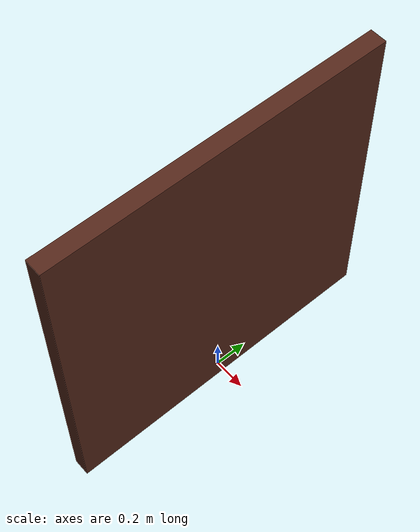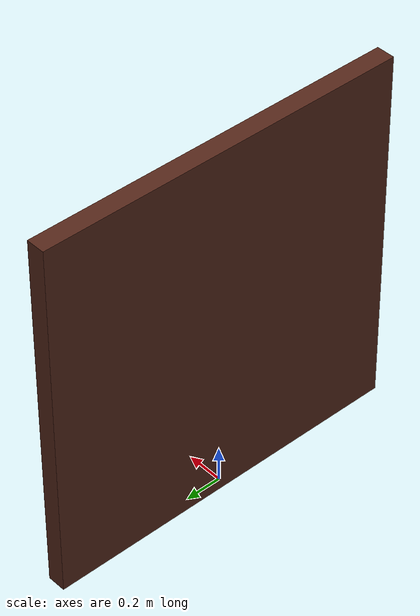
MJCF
<?xml version="1.0" encoding="utf-8"?>
<!-- from https://github.com/vikashplus/mj_envs/tree/master/mj_envs/hand_manipulation_suite/assets -->
<!-- Information about door can be found in this paper: https://arxiv.org/pdf/1709.10087.pdf -->

<mujoco model="wall">
  <asset>
    <texture file="../textures/white-bricks.png" type="cube" name="white-bricks" />
    <material name="MatGrayBricks" texture="white-bricks" texrepeat="3 3" specular="0.4" shininess="0.1" rgba="0.5 0.5 0.5 1"/>
  </asset>
    <worldbody>
      <body>
        <body name="object">
          <body pos="0 0 1.0">
            <geom size="0.05 1.0 1.0" type="box" friction="1 1 1" quat="0 0 0.707107 0.707107" group="0" name="panel" material="MatGrayBricks"/>
          </body>
        </body>
        <site name="bottom_site" pos="0 0 -0.6" rgba="0 0 0 0" size="0.005"/>
        <site name="top_site" pos="0 0 0.6" rgba="0 0 0 0" size="0.005"/>
        <site name="horizontal_radius_site" pos="0.3 0 0" rgba="0 0 0 0" size="0.1"/>
      </body>
    </worldbody>
</mujoco>
